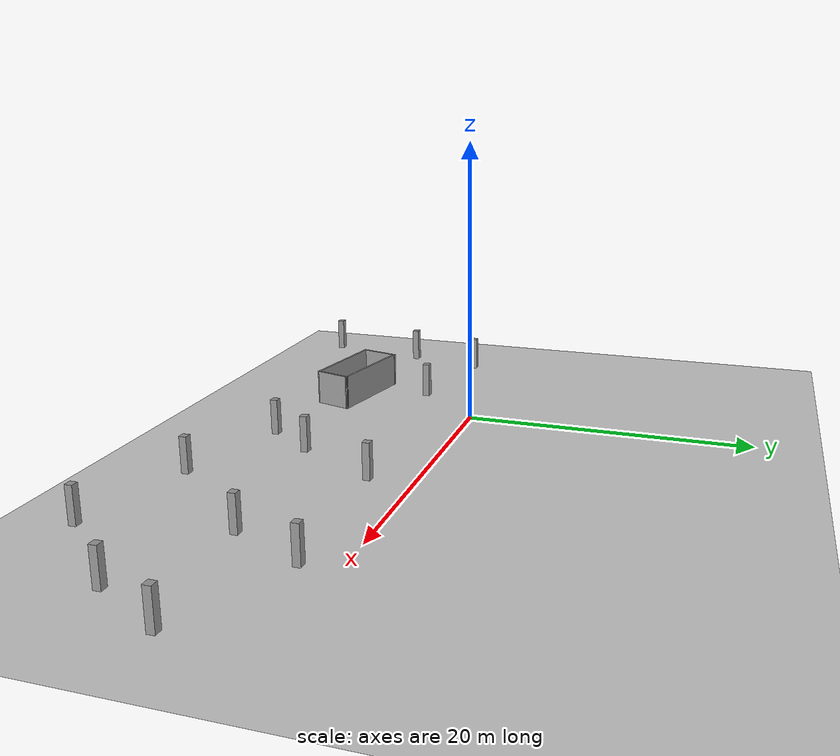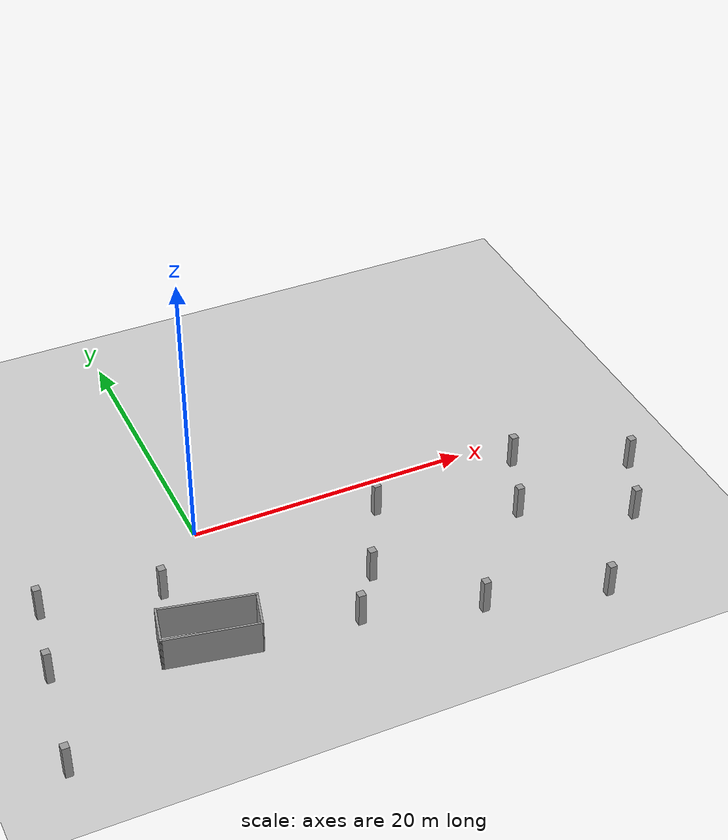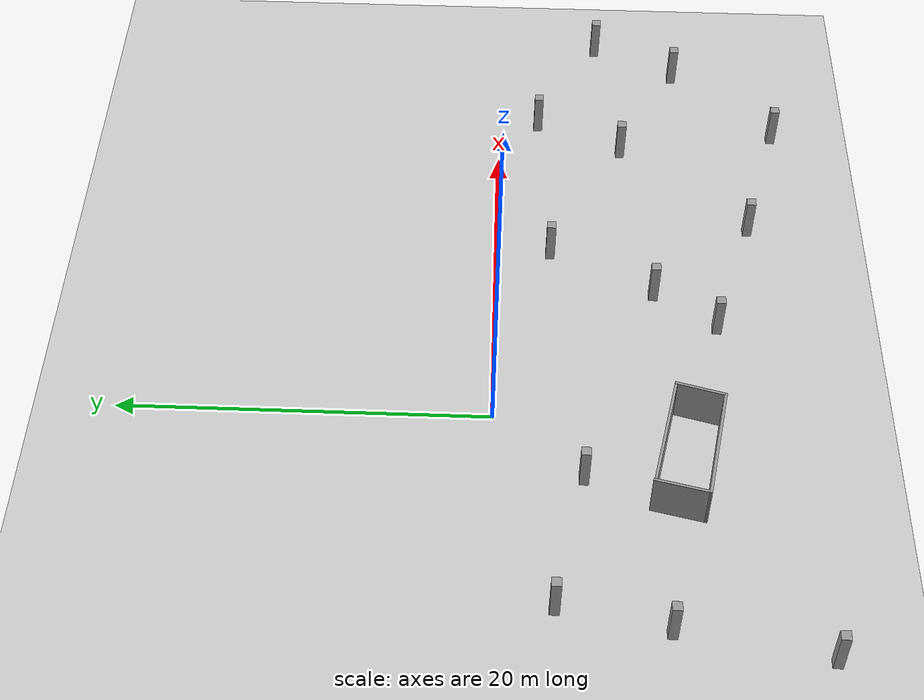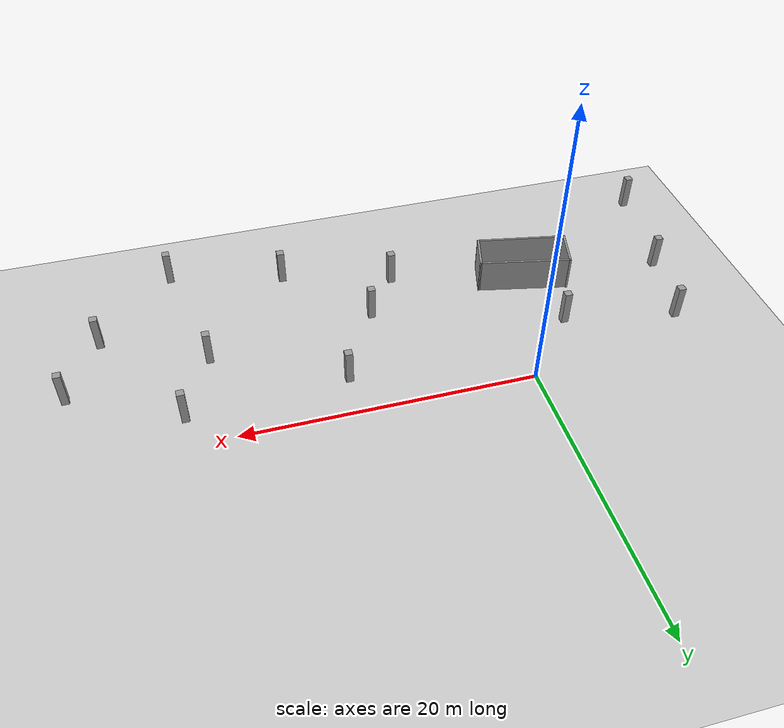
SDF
<sdf version="1.6">
 <world name="default">
  <model name="ground_plane">
   <static>1</static>
   <link name="link">
    <collision name="collision">
     <geometry><plane><normal>0 0 1</normal><size>100 100</size></plane></geometry>
     <surface>
      <contact><collide_bitmask>65535</collide_bitmask></contact>
      <friction><ode><mu>100</mu><mu2>50</mu2></ode></friction>
     </surface>
    </collision>
    <visual name="visual">
     <cast_shadows>0</cast_shadows>
     <geometry><plane><normal>0 0 1</normal><size>100 100</size></plane></geometry>
     <material>
      <script><uri>file://media/materials/scripts/gazebo.material</uri><name>Gazebo/Grey</name></script>
     </material>
    </visual>
   </link>
  </model>
  <model name="parking_area_big_2">
   <pose>0.028574 -0.058085 0 0 -0 0</pose>
   <link name="Wall_182">
    <collision name="Wall_182_Collision">
     <geometry><box><size>0.51 0.5 2.5</size></box></geometry>
     <pose>0 0 1.25 0 -0 0</pose>
    </collision>
    <visual name="Wall_182_Visual">
     <pose>0 0 1.25 0 -0 0</pose>
     <geometry><box><size>0.51 0.5 2.5</size></box></geometry>
     <material>
      <script><uri>file://media/materials/scripts/gazebo.material</uri><name>Gazebo/Grey</name></script>
      <ambient>1 1 1 1</ambient>
     </material>
     <meta><layer>0</layer></meta>
    </visual>
    <pose>-11.8341 -3.13263 0 0 -0 0</pose>
   </link>
   <link name="Wall_184">
    <collision name="Wall_184_Collision">
     <geometry><box><size>0.51 0.5 2.5</size></box></geometry>
     <pose>0 0 1.25 0 -0 0</pose>
    </collision>
    <visual name="Wall_184_Visual">
     <pose>0 0 1.25 0 -0 0</pose>
     <geometry><box><size>0.51 0.5 2.5</size></box></geometry>
     <material>
      <script><uri>file://media/materials/scripts/gazebo.material</uri><name>Gazebo/Grey</name></script>
      <ambient>1 1 1 1</ambient>
     </material>
     <meta><layer>0</layer></meta>
    </visual>
    <pose>-3.99875 -4.66542 0 0 -0 0</pose>
   </link>
   <link name="Wall_186">
    <collision name="Wall_186_Collision">
     <geometry><box><size>6.59009 0.15 2.5</size></box></geometry>
     <pose>0 0 1.25 0 -0 0</pose>
    </collision>
    <visual name="Wall_186_Visual">
     <pose>0 0 1.25 0 -0 0</pose>
     <geometry><box><size>6.59009 0.15 2.5</size></box></geometry>
     <material>
      <script><uri>file://media/materials/scripts/gazebo.material</uri><name>Gazebo/Grey</name></script>
      <ambient>1 1 1 1</ambient>
     </material>
     <meta><layer>0</layer></meta>
    </visual>
    <pose>-2.46992 -8.72498 0 0 -0 -0.207766</pose>
   </link>
   <link name="Wall_187">
    <collision name="Wall_187_Collision">
     <geometry><box><size>2.75 0.15 2.5</size></box></geometry>
     <pose>0 0 1.25 0 -0 0</pose>
    </collision>
    <visual name="Wall_187_Visual">
     <pose>0 0 1.25 0 -0 0</pose>
     <geometry><box><size>2.75 0.15 2.5</size></box></geometry>
     <material>
      <script><uri>file://media/materials/scripts/gazebo.material</uri><name>Gazebo/Grey</name></script>
      <ambient>1 1 1 1</ambient>
     </material>
     <meta><layer>0</layer></meta>
    </visual>
    <pose>0.344408 -10.6449 0 0 -0 -1.8326</pose>
   </link>
   <link name="Wall_188">
    <collision name="Wall_188_Collision">
     <geometry><box><size>6.51966 0.15 2.5</size></box></geometry>
     <pose>0 0 1.25 0 -0 0</pose>
    </collision>
    <visual name="Wall_188_Visual">
     <pose>0 0 1.25 0 -0 0</pose>
     <geometry><box><size>6.51966 0.15 2.5</size></box></geometry>
     <material>
      <script><uri>file://media/materials/scripts/gazebo.material</uri><name>Gazebo/Grey</name></script>
      <ambient>1 1 1 1</ambient>
     </material>
     <meta><layer>0</layer></meta>
    </visual>
    <pose>-3.12358 -11.3203 0 0 -0 2.95837</pose>
   </link>
   <link name="Wall_189">
    <collision name="Wall_189_Collision">
     <geometry><box><size>2.94197 0.15 2.5</size></box></geometry>
     <pose>0 0 1.25 0 -0 0</pose>
    </collision>
    <visual name="Wall_189_Visual">
     <pose>0 0 1.25 0 -0 0</pose>
     <geometry><box><size>2.94197 0.15 2.5</size></box></geometry>
     <material>
      <script><uri>file://media/materials/scripts/gazebo.material</uri><name>Gazebo/Grey</name></script>
      <ambient>1 1 1 1</ambient>
     </material>
     <meta><layer>0</layer></meta>
    </visual>
    <pose>-5.93791 -9.38059 0 0 -0 1.34158</pose>
   </link>
   <link name="Wall_191">
    <collision name="Wall_191_Collision">
     <geometry><box><size>0.51 0.5 2.5</size></box></geometry>
     <pose>0 0 1.25 0 -0 0</pose>
    </collision>
    <visual name="Wall_191_Visual">
     <pose>0 0 1.25 0 -0 0</pose>
     <geometry><box><size>0.51 0.5 2.5</size></box></geometry>
     <material>
      <script><uri>file://media/materials/scripts/gazebo.material</uri><name>Gazebo/Grey</name></script>
      <ambient>1 1 1 1</ambient>
     </material>
     <meta><layer>0</layer></meta>
    </visual>
    <pose>-12.9415 -8.74134 0 0 -0 0</pose>
   </link>
   <link name="Wall_256">
    <collision name="Wall_256_Collision">
     <geometry><box><size>0.51 0.5 2.5</size></box></geometry>
     <pose>0 0 1.25 0 -0 0</pose>
    </collision>
    <visual name="Wall_256_Visual">
     <pose>0 0 1.25 0 -0 0</pose>
     <geometry><box><size>0.51 0.5 2.5</size></box></geometry>
     <material>
      <script><uri>file://media/materials/scripts/gazebo.material</uri><name>Gazebo/Grey</name></script>
      <ambient>1 1 1 1</ambient>
     </material>
     <meta><layer>0</layer></meta>
    </visual>
    <pose>-14.2069 -16.4034 0 0 -0 0</pose>
   </link>
   <link name="Wall_270">
    <collision name="Wall_270_Collision">
     <geometry><box><size>0.51 0.5 2.5</size></box></geometry>
     <pose>0 0 1.25 0 -0 0</pose>
    </collision>
    <visual name="Wall_270_Visual">
     <pose>0 0 1.25 0 -0 0</pose>
     <geometry><box><size>0.51 0.5 2.5</size></box></geometry>
     <material>
      <script><uri>file://media/materials/scripts/gazebo.material</uri><name>Gazebo/Grey</name></script>
      <ambient>1 1 1 1</ambient>
     </material>
     <meta><layer>0</layer></meta>
    </visual>
    <pose>8.99704 -8.72292 0 0 -0 0</pose>
   </link>
   <link name="Wall_272">
    <collision name="Wall_272_Collision">
     <geometry><box><size>0.51 0.5 2.5</size></box></geometry>
     <pose>0 0 1.25 0 -0 0</pose>
    </collision>
    <visual name="Wall_272_Visual">
     <pose>0 0 1.25 0 -0 0</pose>
     <geometry><box><size>0.51 0.5 2.5</size></box></geometry>
     <material>
      <script><uri>file://media/materials/scripts/gazebo.material</uri><name>Gazebo/Grey</name></script>
      <ambient>1 1 1 1</ambient>
     </material>
     <meta><layer>0</layer></meta>
    </visual>
    <pose>6.63143 -12.1194 0 0 -0 0</pose>
   </link>
   <link name="Wall_274">
    <collision name="Wall_274_Collision">
     <geometry><box><size>0.51 0.5 2.5</size></box></geometry>
     <pose>0 0 1.25 0 -0 0</pose>
    </collision>
    <visual name="Wall_274_Visual">
     <pose>0 0 1.25 0 -0 0</pose>
     <geometry><box><size>0.51 0.5 2.5</size></box></geometry>
     <material>
      <script><uri>file://media/materials/scripts/gazebo.material</uri><name>Gazebo/Grey</name></script>
      <ambient>1 1 1 1</ambient>
     </material>
     <meta><layer>0</layer></meta>
    </visual>
    <pose>14.3537 -14.3546 0 0 -0 0</pose>
   </link>
   <link name="Wall_276">
    <collision name="Wall_276_Collision">
     <geometry><box><size>0.51 0.5 2.5</size></box></geometry>
     <pose>0 0 1.25 0 -0 0</pose>
    </collision>
    <visual name="Wall_276_Visual">
     <pose>0 0 1.25 0 -0 0</pose>
     <geometry><box><size>0.51 0.5 2.5</size></box></geometry>
     <material>
      <script><uri>file://media/materials/scripts/gazebo.material</uri><name>Gazebo/Grey</name></script>
      <ambient>1 1 1 1</ambient>
     </material>
     <meta><layer>0</layer></meta>
    </visual>
    <pose>22.3693 -16.385 0 0 -0 0</pose>
   </link>
   <link name="Wall_78">
    <collision name="Wall_78_Collision">
     <geometry><box><size>0.51 0.5 2.5</size></box></geometry>
     <pose>0 0 1.25 0 -0 0</pose>
    </collision>
    <visual name="Wall_78_Visual">
     <pose>0 0 1.25 0 -0 0</pose>
     <geometry><box><size>0.51 0.5 2.5</size></box></geometry>
     <material>
      <script><uri>file://media/materials/scripts/gazebo.material</uri><name>Gazebo/Grey</name></script>
      <ambient>1 1 1 1</ambient>
     </material>
     <meta><layer>0</layer></meta>
    </visual>
    <pose>30.2801 -5.85982 0 0 -0 0</pose>
   </link>
   <link name="Wall_80">
    <collision name="Wall_80_Collision">
     <geometry><box><size>0.51 0.5 2.5</size></box></geometry>
     <pose>0 0 1.25 0 -0 0</pose>
    </collision>
    <visual name="Wall_80_Visual">
     <pose>0 0 1.25 0 -0 0</pose>
     <geometry><box><size>0.51 0.5 2.5</size></box></geometry>
     <material>
      <script><uri>file://media/materials/scripts/gazebo.material</uri><name>Gazebo/Grey</name></script>
      <ambient>1 1 1 1</ambient>
     </material>
     <meta><layer>0</layer></meta>
    </visual>
    <pose>22.9408 -2.2716 0 0 -0 0</pose>
   </link>
   <link name="Wall_93">
    <collision name="Wall_93_Collision">
     <geometry><box><size>0.51 0.5 2.5</size></box></geometry>
     <pose>0 0 1.25 0 -0 0</pose>
    </collision>
    <visual name="Wall_93_Visual">
     <pose>0 0 1.25 0 -0 0</pose>
     <geometry><box><size>0.51 0.5 2.5</size></box></geometry>
     <material>
      <script><uri>file://media/materials/scripts/gazebo.material</uri><name>Gazebo/Grey</name></script>
      <ambient>1 1 1 1</ambient>
     </material>
     <meta><layer>0</layer></meta>
    </visual>
    <pose>27.7935 -10.6219 0 0 -0 0</pose>
   </link>
   <link name="Wall_95">
    <collision name="Wall_95_Collision">
     <geometry><box><size>0.51 0.5 2.5</size></box></geometry>
     <pose>0 0 1.25 0 -0 0</pose>
    </collision>
    <visual name="Wall_95_Visual">
     <pose>0 0 1.25 0 -0 0</pose>
     <geometry><box><size>0.51 0.5 2.5</size></box></geometry>
     <material>
      <script><uri>file://media/materials/scripts/gazebo.material</uri><name>Gazebo/Grey</name></script>
      <ambient>1 1 1 1</ambient>
     </material>
     <meta><layer>0</layer></meta>
    </visual>
    <pose>20.7174 -7.19872 0 0 -0 0</pose>
   </link>
   <link name="Wall_97">
    <collision name="Wall_97_Collision">
     <geometry><box><size>0.51 0.5 2.5</size></box></geometry>
     <pose>0 0 1.25 0 -0 0</pose>
    </collision>
    <visual name="Wall_97_Visual">
     <pose>0 0 1.25 0 -0 0</pose>
     <geometry><box><size>0.51 0.5 2.5</size></box></geometry>
     <material>
      <script><uri>file://media/materials/scripts/gazebo.material</uri><name>Gazebo/Grey</name></script>
      <ambient>1 1 1 1</ambient>
     </material>
     <meta><layer>0</layer></meta>
    </visual>
    <pose>12.0311 -2.98792 0 0 -0 0</pose>
   </link>
   <static>1</static>
  </model>
 </world>
</sdf>
